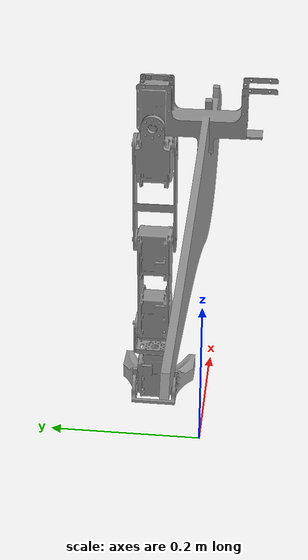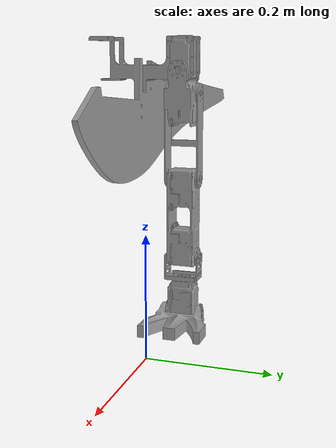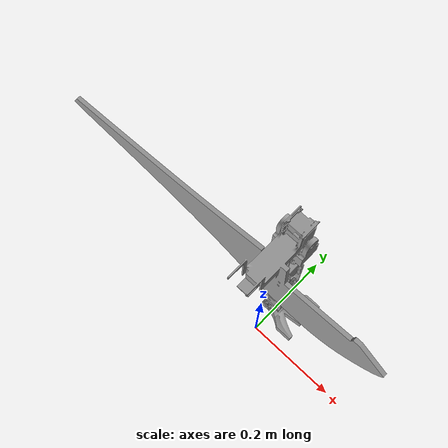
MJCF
<mujoco model="teropobot scene">

  <include file="teropobot.xml"/>

  <statistic center="0 0 0.1" extent="0.8"/>

  <visual>
    <headlight diffuse="0.6 0.6 0.6" ambient="0.3 0.3 0.3" specular="0 0 0"/>
    <rgba haze="0.15 0.25 0.35 1"/>
    <global azimuth="120" elevation="-20"/>
  </visual>

  <asset>
    <texture type="skybox" builtin="gradient" rgb1="0.3 0.5 0.7" rgb2="0 0 0" width="512" height="3072"/>
    <texture type="2d" name="groundplane" builtin="checker" mark="edge" rgb1="0.2 0.3 0.4" rgb2="0.1 0.2 0.3"
      markrgb="0.8 0.8 0.8" width="300" height="300"/>
    <material name="groundplane" texture="groundplane" texuniform="true" texrepeat="5 5" reflectance="0.2"/>
  </asset>

  <worldbody>
    <light pos="0 0 1.5" dir="0 0 -1" directional="true"/>
  </worldbody>

</mujoco>

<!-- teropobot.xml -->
<mujoco model="teropobot">
  <compiler angle="radian" meshdir="assets" texturedir="assets" autolimits="true"/>

  <!-- Brax doesn't support cone_elliptic-->

  <default>
    <default class="teropobot">
      <geom friction="0.2" margin="0.001"/>
      <joint damping="1.0" armature="0.01"/> <!-- Brax doesn't support frictionloss-->
      <position kp="60" ctrlrange="-3.141592 3.141592" forcerange="-7 7"/>

      <!-- Joints -->
      <default class="hip_roll">
        <joint range="-0.2 0.11" axis="1 0 0"/>
        <position ctrlrange="-0.2 0.11"/>
      </default>
      <default class="hip_pitch">
        <joint range="-1.57 1.57" axis="0 1 0"/>
        <position ctrlrange="-1.57 1.57"/>
      </default>
      <default class="knee">
        <joint range="-1.57 1.57" axis="0 1 0"/>
        <position ctrlrange="-1.57 1.57"/>
      </default>
      <default class="ankle">
        <joint range="-1.57 0.64" axis="0 1 0"/>
        <position ctrlrange="-1.57 0.64"/>
      </default>
      <default class="metatarsophalangeal">
        <joint range="-0.5 1.0" axis="0 1 0"/>
        <position ctrlrange="-0.5 1.0"/>
      </default>

      <!-- visual -->
      <default class="visual">
        <geom type="mesh" contype="0" conaffinity="0" group="2" material="default_material"/>
      </default>

      <!-- Links - collision bodies -->
      <default class="collision">
        <geom group="3" type="capsule"/>
        <default class="base_link">
          <geom type="box" size="0.310 0.01 0.05" pos="-0.05 0.0 0.05" material="collision_material"/>
        </default>
        <default class="head_link">
          <geom type="box" size="0.22 0.03 0.04" pos="0.05 0.0 0.02" material="collision_material"/>
        </default>
        <default class="hip_link">
          <geom type="box" size="0.025 0.025 0.03" pos="0.0 0.0 0.03" material="collision_material"/>
        </default>
        <default class="femur">
          <geom type="box" size="0.02 0.02 0.025" pos="0.0 0.0 -0.08" material="collision_material"/>
        </default>
        <default class="tibia">
          <geom type="box" size="0.02 0.02 0.06" pos="0.0 0.0 -0.06" material="collision_material"/>
        </default>
        <default class="metatarsals">
          <geom type="box" size="0.02 0.02 0.02" pos="0.0 0.0 -0.06" material="collision_material"/>
        </default>
        <default class="phalanges">
          <geom type="box" size="0.02 0.05 0.01" pos="0.06 0.0 -0.01" material="collision_material"/>
        </default>
        <default class="phalanges_rear">
          <geom type="box" size="0.02 0.03 0.01" pos="0.0 0.0 -0.01" material="collision_material"/>
        </default>
      </default>
    </default>
  </default>

  <!-- Define assets -->
  <asset>
    <material name="default_material" specular="0" shininess="0.25" rgba="0.6 0.6 0.6 1"/>
    <material name="collision_material" specular="0" shininess="0.25" rgba="1.0 0.5 0.0 0.8"/>
    <mesh class="teropobot" file="base_link.obj"/>
    <mesh class="teropobot" file="l1.obj"/>
    <mesh class="teropobot" file="l2.obj"/>
    <mesh class="teropobot" file="l3.obj"/>
    <mesh class="teropobot" file="l4.obj"/>
    <mesh class="teropobot" file="foot.obj"/>
  </asset>

  <worldbody>
    <light name="spotlight" mode="targetbodycom" target="base_link" pos="0 -1 2"/>

    <!-- Body -->
    <body name="base_link" pos="0 0 0.45" childclass="teropobot">

      <inertial mass="1.410" pos="0.094622 0.000221 0.120537" quat="1 0 0 0" diaginertia="0.001 0.0007 0.0007"/>
      <geom class="visual" mesh="base_link" material="default_material"/>
      <geom class="base_link"/>

      <!-- Left leg -->
      <body name="left_hip" pos="0 0.06 0">
        <joint class="hip_roll" name="left_hip_roll_joint"/>
        <inertial mass="0.248" pos="0 0 -0.02" quat="1 0 0 0" diaginertia="1E-4 1E-4 0.5E-4"/>
        <geom class="visual" mesh="l1" quat="1 0 0 0" pos="0 0 0"/>
        <geom class="hip_link"/>

        <body name="left_hip_pitch" pos="0 0.0 -0.033">
          <joint class="hip_pitch" name="left_hip_pitch_joint"/>
          <inertial mass="0.042" pos="0 0 -0.0625" quat="1 0 0 0" diaginertia="2E-5 2E-5 0.2E-5"/>
          <geom class="visual" mesh="l2" quat="1 0 0 0" pos="0 0 0"/>
          <geom class="femur"/>

          <body name="left_knee" pos="0 0 -0.125">
            <joint class="knee" name="left_knee_joint"/>
            <inertial mass="0.420" pos="0 0 -0.06" quat="1 0 0 0" diaginertia="0.5E-3 0.5E-3 0.1E-3"/>
            <geom class="visual" mesh="l3" quat="1 0 0 0" pos="0 0 0"/>
            <geom class="tibia"/>

            <body name="left_ankle" pos="0 0 -0.119">
              <joint class="ankle" name="left_ankle_joint"/>
              <inertial mass="0.216" pos="0 0 -0.05" quat="1 0 0 0" diaginertia="1E-4 1E-4 0.4E-4"/>
              <geom class="visual" mesh="l4" quat="1 0 0 0" pos="0 0 0"/>
              <geom class="metatarsals"/>

              <body name="left_phalanges" pos="0 0 -0.088">
                <joint class="metatarsophalangeal" name="left_metatarsophalangeal_joint"/>
                <inertial mass="0.078" pos="0.01 0 0" quat="1 0 0 0" diaginertia="0.00005 0.00005 0.00009"/>
                <geom class="visual" mesh="foot" quat="1 0 0 0" pos="0 0 0"/>
                <geom class="phalanges"/>
                <geom class="phalanges_rear"/>
                <site name="left_foot"/>
              </body> <!-- Left Phalanges-->
            </body> <!-- Left Metatarsals -->
          </body> <!-- Left tibia -->
        </body> <!--
        Left femur -->
      </body> <!--
      Left hip -->
      <!-- Left leg -->
    </body>
  </worldbody>

  <!-- Define actuators -->
  <!-- class: is the class of the joint
         name: is the label
         joint: the name of the joint where the actuator is set
    -->
  <actuator>

    <position class="hip_roll" name="left_hip_roll" joint="left_hip_roll_joint"/>
    <position class="hip_pitch" name="left_hip_pitch" joint="left_hip_pitch_joint"/>
    <position class="knee" name="left_knee" joint="left_knee_joint"/>
    <position class="ankle" name="left_ankle" joint="left_ankle_joint"/>
    <position class="metatarsophalangeal" name="left_metatarsophalangeal" joint="left_metatarsophalangeal_joint"/>
  </actuator>

  <!-- Commands that define the home posture -->
  <keyframe>
    <!-- x y z qw qx qy qz {qi} -->
    <!-- qi are the generalized coordinates of all the joints -->
    <key name="home" qpos=" 0 0 0 0 0"
      ctrl=" 0 0 0 0 0 "/>
  </keyframe>
</mujoco>
